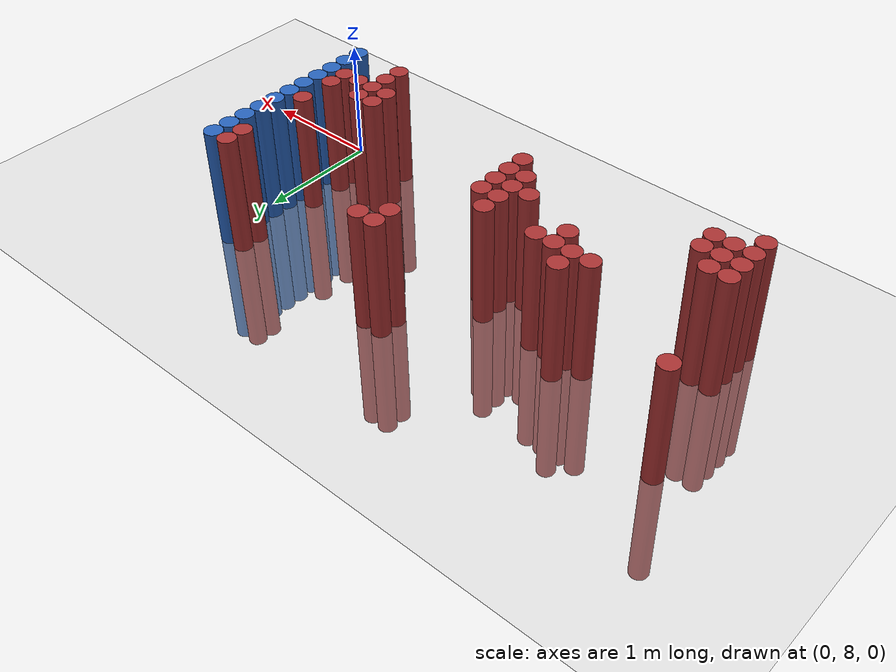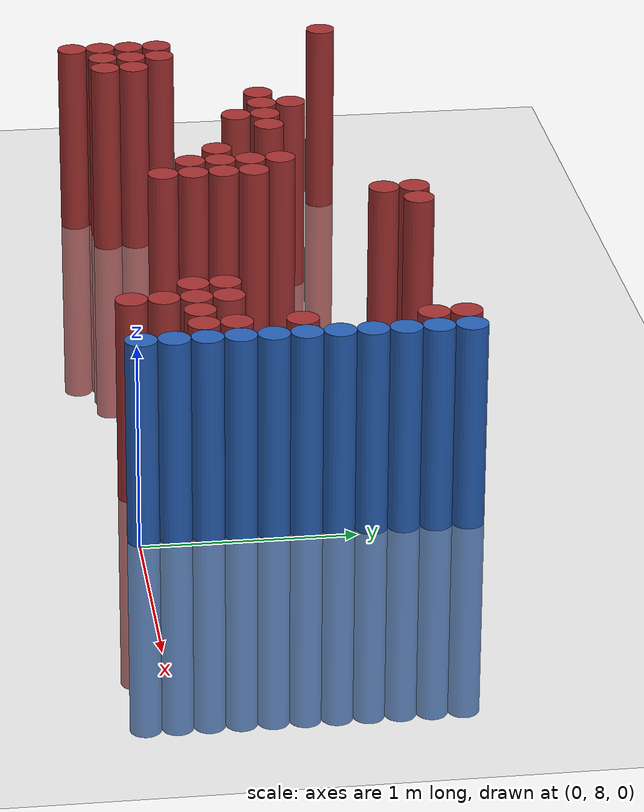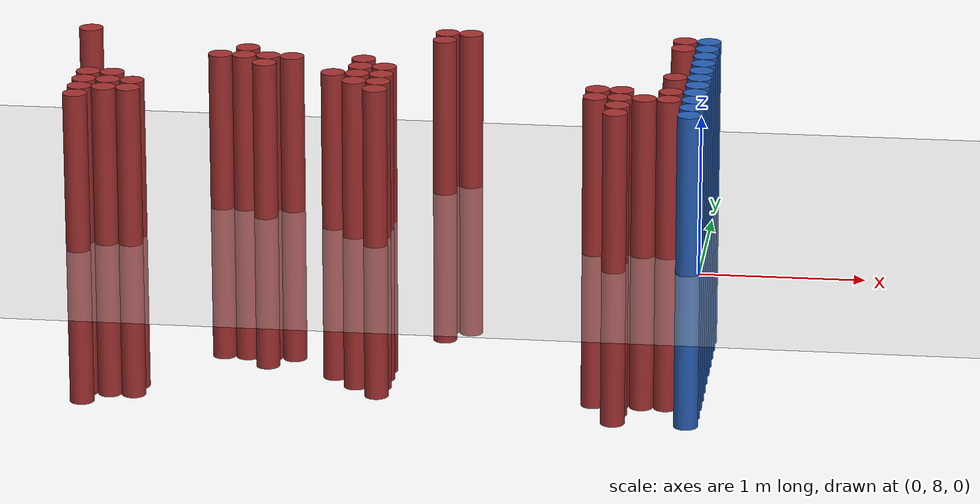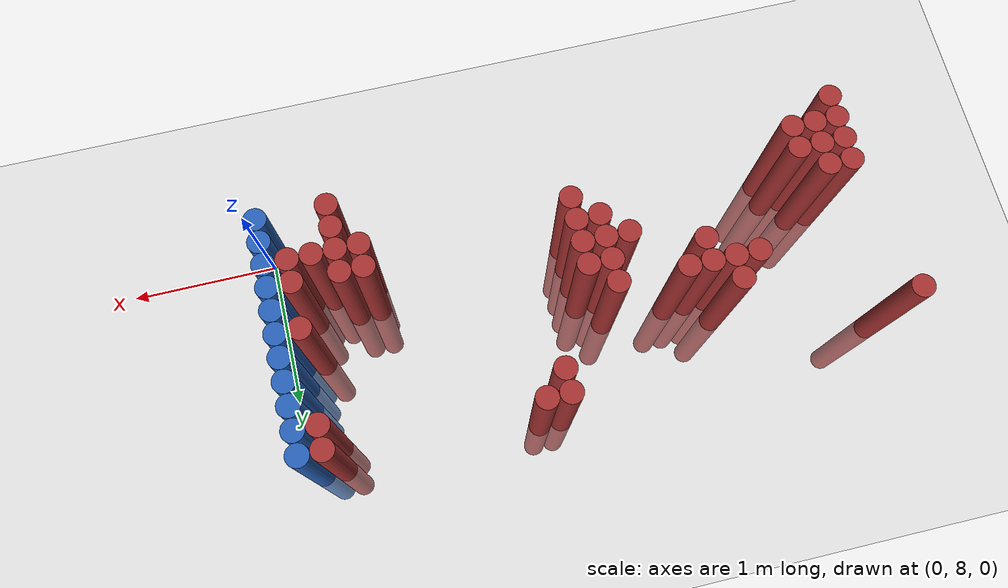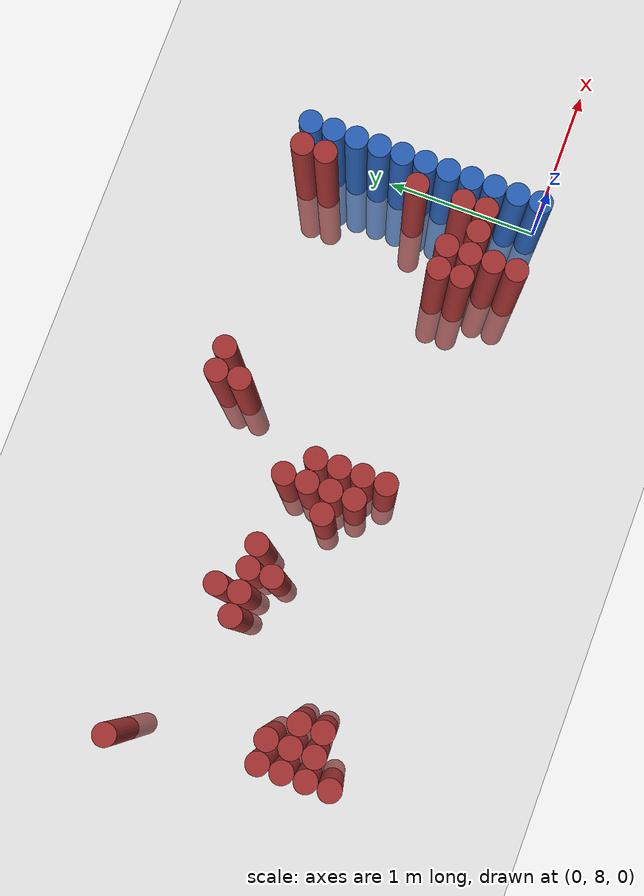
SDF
<sdf version="1.6">
 <world name="default">
  <model name="ground_plane">
   <static>1</static>
   <link name="link">
    <collision name="collision">
     <geometry><plane><normal>0 0 1</normal><size>100 100</size></plane></geometry>
     <surface><friction><ode><mu>100</mu><mu2>50</mu2></ode></friction></surface>
    </collision>
    <visual name="visual">
     <cast_shadows>0</cast_shadows>
     <geometry><plane><normal>0 0 1</normal><size>100 100</size></plane></geometry>
     <material>
      <script><uri>file://media/materials/scripts/gazebo.material</uri><name>Gazebo/Grey</name></script>
     </material>
    </visual>
   </link>
  </model>
  <model name="unit_cylinder_150">
   <static>1</static>
   <pose>-3.975000 9.375000 0.000000 0.000000 0.000000 0.000000</pose>
   <link name="link">
    <inertial>
     <mass>1</mass>
     <inertia><ixx>0.145833</ixx><ixy>0</ixy><ixz>0</ixz><iyy>0.145833</iyy><iyz>0</iyz><izz>0.125</izz></inertia>
    </inertial>
    <collision name="collision">
     <geometry><cylinder><radius>0.075000</radius><length>2</length></cylinder></geometry>
    </collision>
    <visual name="visual">
     <geometry><cylinder><radius>0.075000</radius><length>2</length></cylinder></geometry>
     <material>
      <ambient>0.648000 0.192000 0.192000 1</ambient>
      <diffuse>0.648000 0.192000 0.192000 1</diffuse>
     </material>
     <material>
      <script><name>Gazebo/Grey</name><uri>file://media/materials/scripts/gazebo.material</uri></script>
     </material>
    </visual>
   </link>
  </model>
  <model name="unit_cylinder_155">
   <static>1</static>
   <pose>-3.825000 8.025000 0.000000 0.000000 0.000000 0.000000</pose>
   <link name="link">
    <inertial>
     <mass>1</mass>
     <inertia><ixx>0.145833</ixx><ixy>0</ixy><ixz>0</ixz><iyy>0.145833</iyy><iyz>0</iyz><izz>0.125</izz></inertia>
    </inertial>
    <collision name="collision">
     <geometry><cylinder><radius>0.075000</radius><length>2</length></cylinder></geometry>
    </collision>
    <visual name="visual">
     <geometry><cylinder><radius>0.075000</radius><length>2</length></cylinder></geometry>
     <material>
      <ambient>0.648000 0.192000 0.192000 1</ambient>
      <diffuse>0.648000 0.192000 0.192000 1</diffuse>
     </material>
     <material>
      <script><name>Gazebo/Grey</name><uri>file://media/materials/scripts/gazebo.material</uri></script>
     </material>
    </visual>
   </link>
  </model>
  <model name="unit_cylinder_156">
   <static>1</static>
   <pose>-3.825000 8.175000 0.000000 0.000000 0.000000 0.000000</pose>
   <link name="link">
    <inertial>
     <mass>1</mass>
     <inertia><ixx>0.145833</ixx><ixy>0</ixy><ixz>0</ixz><iyy>0.145833</iyy><iyz>0</iyz><izz>0.125</izz></inertia>
    </inertial>
    <collision name="collision">
     <geometry><cylinder><radius>0.075000</radius><length>2</length></cylinder></geometry>
    </collision>
    <visual name="visual">
     <geometry><cylinder><radius>0.075000</radius><length>2</length></cylinder></geometry>
     <material>
      <ambient>0.648000 0.192000 0.192000 1</ambient>
      <diffuse>0.648000 0.192000 0.192000 1</diffuse>
     </material>
     <material>
      <script><name>Gazebo/Grey</name><uri>file://media/materials/scripts/gazebo.material</uri></script>
     </material>
    </visual>
   </link>
  </model>
  <model name="unit_cylinder_157">
   <static>1</static>
   <pose>-3.825000 8.325000 0.000000 0.000000 0.000000 0.000000</pose>
   <link name="link">
    <inertial>
     <mass>1</mass>
     <inertia><ixx>0.145833</ixx><ixy>0</ixy><ixz>0</ixz><iyy>0.145833</iyy><iyz>0</iyz><izz>0.125</izz></inertia>
    </inertial>
    <collision name="collision">
     <geometry><cylinder><radius>0.075000</radius><length>2</length></cylinder></geometry>
    </collision>
    <visual name="visual">
     <geometry><cylinder><radius>0.075000</radius><length>2</length></cylinder></geometry>
     <material>
      <ambient>0.648000 0.192000 0.192000 1</ambient>
      <diffuse>0.648000 0.192000 0.192000 1</diffuse>
     </material>
     <material>
      <script><name>Gazebo/Grey</name><uri>file://media/materials/scripts/gazebo.material</uri></script>
     </material>
    </visual>
   </link>
  </model>
  <model name="unit_cylinder_158">
   <static>1</static>
   <pose>-3.825000 8.475000 0.000000 0.000000 0.000000 0.000000</pose>
   <link name="link">
    <inertial>
     <mass>1</mass>
     <inertia><ixx>0.145833</ixx><ixy>0</ixy><ixz>0</ixz><iyy>0.145833</iyy><iyz>0</iyz><izz>0.125</izz></inertia>
    </inertial>
    <collision name="collision">
     <geometry><cylinder><radius>0.075000</radius><length>2</length></cylinder></geometry>
    </collision>
    <visual name="visual">
     <geometry><cylinder><radius>0.075000</radius><length>2</length></cylinder></geometry>
     <material>
      <ambient>0.648000 0.192000 0.192000 1</ambient>
      <diffuse>0.648000 0.192000 0.192000 1</diffuse>
     </material>
     <material>
      <script><name>Gazebo/Grey</name><uri>file://media/materials/scripts/gazebo.material</uri></script>
     </material>
    </visual>
   </link>
  </model>
  <model name="unit_cylinder_161">
   <static>1</static>
   <pose>-3.675000 8.175000 0.000000 0.000000 0.000000 0.000000</pose>
   <link name="link">
    <inertial>
     <mass>1</mass>
     <inertia><ixx>0.145833</ixx><ixy>0</ixy><ixz>0</ixz><iyy>0.145833</iyy><iyz>0</iyz><izz>0.125</izz></inertia>
    </inertial>
    <collision name="collision">
     <geometry><cylinder><radius>0.075000</radius><length>2</length></cylinder></geometry>
    </collision>
    <visual name="visual">
     <geometry><cylinder><radius>0.075000</radius><length>2</length></cylinder></geometry>
     <material>
      <ambient>0.648000 0.192000 0.192000 1</ambient>
      <diffuse>0.648000 0.192000 0.192000 1</diffuse>
     </material>
     <material>
      <script><name>Gazebo/Grey</name><uri>file://media/materials/scripts/gazebo.material</uri></script>
     </material>
    </visual>
   </link>
  </model>
  <model name="unit_cylinder_162">
   <static>1</static>
   <pose>-3.675000 8.325000 0.000000 0.000000 0.000000 0.000000</pose>
   <link name="link">
    <inertial>
     <mass>1</mass>
     <inertia><ixx>0.145833</ixx><ixy>0</ixy><ixz>0</ixz><iyy>0.145833</iyy><iyz>0</iyz><izz>0.125</izz></inertia>
    </inertial>
    <collision name="collision">
     <geometry><cylinder><radius>0.075000</radius><length>2</length></cylinder></geometry>
    </collision>
    <visual name="visual">
     <geometry><cylinder><radius>0.075000</radius><length>2</length></cylinder></geometry>
     <material>
      <ambient>0.648000 0.192000 0.192000 1</ambient>
      <diffuse>0.648000 0.192000 0.192000 1</diffuse>
     </material>
     <material>
      <script><name>Gazebo/Grey</name><uri>file://media/materials/scripts/gazebo.material</uri></script>
     </material>
    </visual>
   </link>
  </model>
  <model name="unit_cylinder_163">
   <static>1</static>
   <pose>-3.675000 8.475000 0.000000 0.000000 0.000000 0.000000</pose>
   <link name="link">
    <inertial>
     <mass>1</mass>
     <inertia><ixx>0.145833</ixx><ixy>0</ixy><ixz>0</ixz><iyy>0.145833</iyy><iyz>0</iyz><izz>0.125</izz></inertia>
    </inertial>
    <collision name="collision">
     <geometry><cylinder><radius>0.075000</radius><length>2</length></cylinder></geometry>
    </collision>
    <visual name="visual">
     <geometry><cylinder><radius>0.075000</radius><length>2</length></cylinder></geometry>
     <material>
      <ambient>0.648000 0.192000 0.192000 1</ambient>
      <diffuse>0.648000 0.192000 0.192000 1</diffuse>
     </material>
     <material>
      <script><name>Gazebo/Grey</name><uri>file://media/materials/scripts/gazebo.material</uri></script>
     </material>
    </visual>
   </link>
  </model>
  <model name="unit_cylinder_164">
   <static>1</static>
   <pose>-3.525000 8.175000 0.000000 0.000000 0.000000 0.000000</pose>
   <link name="link">
    <inertial>
     <mass>1</mass>
     <inertia><ixx>0.145833</ixx><ixy>0</ixy><ixz>0</ixz><iyy>0.145833</iyy><iyz>0</iyz><izz>0.125</izz></inertia>
    </inertial>
    <collision name="collision">
     <geometry><cylinder><radius>0.075000</radius><length>2</length></cylinder></geometry>
    </collision>
    <visual name="visual">
     <geometry><cylinder><radius>0.075000</radius><length>2</length></cylinder></geometry>
     <material>
      <ambient>0.648000 0.192000 0.192000 1</ambient>
      <diffuse>0.648000 0.192000 0.192000 1</diffuse>
     </material>
     <material>
      <script><name>Gazebo/Grey</name><uri>file://media/materials/scripts/gazebo.material</uri></script>
     </material>
    </visual>
   </link>
  </model>
  <model name="unit_cylinder_165">
   <static>1</static>
   <pose>-3.525000 8.325000 0.000000 0.000000 0.000000 0.000000</pose>
   <link name="link">
    <inertial>
     <mass>1</mass>
     <inertia><ixx>0.145833</ixx><ixy>0</ixy><ixz>0</ixz><iyy>0.145833</iyy><iyz>0</iyz><izz>0.125</izz></inertia>
    </inertial>
    <collision name="collision">
     <geometry><cylinder><radius>0.075000</radius><length>2</length></cylinder></geometry>
    </collision>
    <visual name="visual">
     <geometry><cylinder><radius>0.075000</radius><length>2</length></cylinder></geometry>
     <material>
      <ambient>0.648000 0.192000 0.192000 1</ambient>
      <diffuse>0.648000 0.192000 0.192000 1</diffuse>
     </material>
     <material>
      <script><name>Gazebo/Grey</name><uri>file://media/materials/scripts/gazebo.material</uri></script>
     </material>
    </visual>
   </link>
  </model>
  <model name="unit_cylinder_168">
   <static>1</static>
   <pose>-3.075000 8.925000 0.000000 0.000000 0.000000 0.000000</pose>
   <link name="link">
    <inertial>
     <mass>1</mass>
     <inertia><ixx>0.145833</ixx><ixy>0</ixy><ixz>0</ixz><iyy>0.145833</iyy><iyz>0</iyz><izz>0.125</izz></inertia>
    </inertial>
    <collision name="collision">
     <geometry><cylinder><radius>0.075000</radius><length>2</length></cylinder></geometry>
    </collision>
    <visual name="visual">
     <geometry><cylinder><radius>0.075000</radius><length>2</length></cylinder></geometry>
     <material>
      <ambient>0.648000 0.192000 0.192000 1</ambient>
      <diffuse>0.648000 0.192000 0.192000 1</diffuse>
     </material>
     <material>
      <script><name>Gazebo/Grey</name><uri>file://media/materials/scripts/gazebo.material</uri></script>
     </material>
    </visual>
   </link>
  </model>
  <model name="unit_cylinder_172">
   <static>1</static>
   <pose>-2.925000 8.925000 0.000000 0.000000 0.000000 0.000000</pose>
   <link name="link">
    <inertial>
     <mass>1</mass>
     <inertia><ixx>0.145833</ixx><ixy>0</ixy><ixz>0</ixz><iyy>0.145833</iyy><iyz>0</iyz><izz>0.125</izz></inertia>
    </inertial>
    <collision name="collision">
     <geometry><cylinder><radius>0.075000</radius><length>2</length></cylinder></geometry>
    </collision>
    <visual name="visual">
     <geometry><cylinder><radius>0.075000</radius><length>2</length></cylinder></geometry>
     <material>
      <ambient>0.648000 0.192000 0.192000 1</ambient>
      <diffuse>0.648000 0.192000 0.192000 1</diffuse>
     </material>
     <material>
      <script><name>Gazebo/Grey</name><uri>file://media/materials/scripts/gazebo.material</uri></script>
     </material>
    </visual>
   </link>
  </model>
  <model name="unit_cylinder_173">
   <static>1</static>
   <pose>-2.925000 9.075000 0.000000 0.000000 0.000000 0.000000</pose>
   <link name="link">
    <inertial>
     <mass>1</mass>
     <inertia><ixx>0.145833</ixx><ixy>0</ixy><ixz>0</ixz><iyy>0.145833</iyy><iyz>0</iyz><izz>0.125</izz></inertia>
    </inertial>
    <collision name="collision">
     <geometry><cylinder><radius>0.075000</radius><length>2</length></cylinder></geometry>
    </collision>
    <visual name="visual">
     <geometry><cylinder><radius>0.075000</radius><length>2</length></cylinder></geometry>
     <material>
      <ambient>0.648000 0.192000 0.192000 1</ambient>
      <diffuse>0.648000 0.192000 0.192000 1</diffuse>
     </material>
     <material>
      <script><name>Gazebo/Grey</name><uri>file://media/materials/scripts/gazebo.material</uri></script>
     </material>
    </visual>
   </link>
  </model>
  <model name="unit_cylinder_176">
   <static>1</static>
   <pose>-2.775000 8.775000 0.000000 0.000000 0.000000 0.000000</pose>
   <link name="link">
    <inertial>
     <mass>1</mass>
     <inertia><ixx>0.145833</ixx><ixy>0</ixy><ixz>0</ixz><iyy>0.145833</iyy><iyz>0</iyz><izz>0.125</izz></inertia>
    </inertial>
    <collision name="collision">
     <geometry><cylinder><radius>0.075000</radius><length>2</length></cylinder></geometry>
    </collision>
    <visual name="visual">
     <geometry><cylinder><radius>0.075000</radius><length>2</length></cylinder></geometry>
     <material>
      <ambient>0.648000 0.192000 0.192000 1</ambient>
      <diffuse>0.648000 0.192000 0.192000 1</diffuse>
     </material>
     <material>
      <script><name>Gazebo/Grey</name><uri>file://media/materials/scripts/gazebo.material</uri></script>
     </material>
    </visual>
   </link>
  </model>
  <model name="unit_cylinder_177">
   <static>1</static>
   <pose>-2.775000 8.925000 0.000000 0.000000 0.000000 0.000000</pose>
   <link name="link">
    <inertial>
     <mass>1</mass>
     <inertia><ixx>0.145833</ixx><ixy>0</ixy><ixz>0</ixz><iyy>0.145833</iyy><iyz>0</iyz><izz>0.125</izz></inertia>
    </inertial>
    <collision name="collision">
     <geometry><cylinder><radius>0.075000</radius><length>2</length></cylinder></geometry>
    </collision>
    <visual name="visual">
     <geometry><cylinder><radius>0.075000</radius><length>2</length></cylinder></geometry>
     <material>
      <ambient>0.648000 0.192000 0.192000 1</ambient>
      <diffuse>0.648000 0.192000 0.192000 1</diffuse>
     </material>
     <material>
      <script><name>Gazebo/Grey</name><uri>file://media/materials/scripts/gazebo.material</uri></script>
     </material>
    </visual>
   </link>
  </model>
  <model name="unit_cylinder_179">
   <static>1</static>
   <pose>-2.625000 8.925000 0.000000 0.000000 0.000000 0.000000</pose>
   <link name="link">
    <inertial>
     <mass>1</mass>
     <inertia><ixx>0.145833</ixx><ixy>0</ixy><ixz>0</ixz><iyy>0.145833</iyy><iyz>0</iyz><izz>0.125</izz></inertia>
    </inertial>
    <collision name="collision">
     <geometry><cylinder><radius>0.075000</radius><length>2</length></cylinder></geometry>
    </collision>
    <visual name="visual">
     <geometry><cylinder><radius>0.075000</radius><length>2</length></cylinder></geometry>
     <material>
      <ambient>0.648000 0.192000 0.192000 1</ambient>
      <diffuse>0.648000 0.192000 0.192000 1</diffuse>
     </material>
     <material>
      <script><name>Gazebo/Grey</name><uri>file://media/materials/scripts/gazebo.material</uri></script>
     </material>
    </visual>
   </link>
  </model>
  <model name="unit_cylinder_180">
   <static>1</static>
   <pose>-2.325000 8.625000 0.000000 0.000000 0.000000 0.000000</pose>
   <link name="link">
    <inertial>
     <mass>1</mass>
     <inertia><ixx>0.145833</ixx><ixy>0</ixy><ixz>0</ixz><iyy>0.145833</iyy><iyz>0</iyz><izz>0.125</izz></inertia>
    </inertial>
    <collision name="collision">
     <geometry><cylinder><radius>0.075000</radius><length>2</length></cylinder></geometry>
    </collision>
    <visual name="visual">
     <geometry><cylinder><radius>0.075000</radius><length>2</length></cylinder></geometry>
     <material>
      <ambient>0.648000 0.192000 0.192000 1</ambient>
      <diffuse>0.648000 0.192000 0.192000 1</diffuse>
     </material>
     <material>
      <script><name>Gazebo/Grey</name><uri>file://media/materials/scripts/gazebo.material</uri></script>
     </material>
    </visual>
   </link>
  </model>
  <model name="unit_cylinder_181">
   <static>1</static>
   <pose>-2.175000 8.475000 0.000000 0.000000 0.000000 0.000000</pose>
   <link name="link">
    <inertial>
     <mass>1</mass>
     <inertia><ixx>0.145833</ixx><ixy>0</ixy><ixz>0</ixz><iyy>0.145833</iyy><iyz>0</iyz><izz>0.125</izz></inertia>
    </inertial>
    <collision name="collision">
     <geometry><cylinder><radius>0.075000</radius><length>2</length></cylinder></geometry>
    </collision>
    <visual name="visual">
     <geometry><cylinder><radius>0.075000</radius><length>2</length></cylinder></geometry>
     <material>
      <ambient>0.648000 0.192000 0.192000 1</ambient>
      <diffuse>0.648000 0.192000 0.192000 1</diffuse>
     </material>
     <material>
      <script><name>Gazebo/Grey</name><uri>file://media/materials/scripts/gazebo.material</uri></script>
     </material>
    </visual>
   </link>
  </model>
  <model name="unit_cylinder_182">
   <static>1</static>
   <pose>-2.175000 8.625000 0.000000 0.000000 0.000000 0.000000</pose>
   <link name="link">
    <inertial>
     <mass>1</mass>
     <inertia><ixx>0.145833</ixx><ixy>0</ixy><ixz>0</ixz><iyy>0.145833</iyy><iyz>0</iyz><izz>0.125</izz></inertia>
    </inertial>
    <collision name="collision">
     <geometry><cylinder><radius>0.075000</radius><length>2</length></cylinder></geometry>
    </collision>
    <visual name="visual">
     <geometry><cylinder><radius>0.075000</radius><length>2</length></cylinder></geometry>
     <material>
      <ambient>0.648000 0.192000 0.192000 1</ambient>
      <diffuse>0.648000 0.192000 0.192000 1</diffuse>
     </material>
     <material>
      <script><name>Gazebo/Grey</name><uri>file://media/materials/scripts/gazebo.material</uri></script>
     </material>
    </visual>
   </link>
  </model>
  <model name="unit_cylinder_183">
   <static>1</static>
   <pose>-2.175000 8.775000 0.000000 0.000000 0.000000 0.000000</pose>
   <link name="link">
    <inertial>
     <mass>1</mass>
     <inertia><ixx>0.145833</ixx><ixy>0</ixy><ixz>0</ixz><iyy>0.145833</iyy><iyz>0</iyz><izz>0.125</izz></inertia>
    </inertial>
    <collision name="collision">
     <geometry><cylinder><radius>0.075000</radius><length>2</length></cylinder></geometry>
    </collision>
    <visual name="visual">
     <geometry><cylinder><radius>0.075000</radius><length>2</length></cylinder></geometry>
     <material>
      <ambient>0.648000 0.192000 0.192000 1</ambient>
      <diffuse>0.648000 0.192000 0.192000 1</diffuse>
     </material>
     <material>
      <script><name>Gazebo/Grey</name><uri>file://media/materials/scripts/gazebo.material</uri></script>
     </material>
    </visual>
   </link>
  </model>
  <model name="unit_cylinder_184">
   <static>1</static>
   <pose>-2.175000 8.925000 0.000000 0.000000 0.000000 0.000000</pose>
   <link name="link">
    <inertial>
     <mass>1</mass>
     <inertia><ixx>0.145833</ixx><ixy>0</ixy><ixz>0</ixz><iyy>0.145833</iyy><iyz>0</iyz><izz>0.125</izz></inertia>
    </inertial>
    <collision name="collision">
     <geometry><cylinder><radius>0.075000</radius><length>2</length></cylinder></geometry>
    </collision>
    <visual name="visual">
     <geometry><cylinder><radius>0.075000</radius><length>2</length></cylinder></geometry>
     <material>
      <ambient>0.648000 0.192000 0.192000 1</ambient>
      <diffuse>0.648000 0.192000 0.192000 1</diffuse>
     </material>
     <material>
      <script><name>Gazebo/Grey</name><uri>file://media/materials/scripts/gazebo.material</uri></script>
     </material>
    </visual>
   </link>
  </model>
  <model name="unit_cylinder_185">
   <static>1</static>
   <pose>-2.025000 8.325000 0.000000 0.000000 0.000000 0.000000</pose>
   <link name="link">
    <inertial>
     <mass>1</mass>
     <inertia><ixx>0.145833</ixx><ixy>0</ixy><ixz>0</ixz><iyy>0.145833</iyy><iyz>0</iyz><izz>0.125</izz></inertia>
    </inertial>
    <collision name="collision">
     <geometry><cylinder><radius>0.075000</radius><length>2</length></cylinder></geometry>
    </collision>
    <visual name="visual">
     <geometry><cylinder><radius>0.075000</radius><length>2</length></cylinder></geometry>
     <material>
      <ambient>0.648000 0.192000 0.192000 1</ambient>
      <diffuse>0.648000 0.192000 0.192000 1</diffuse>
     </material>
     <material>
      <script><name>Gazebo/Grey</name><uri>file://media/materials/scripts/gazebo.material</uri></script>
     </material>
    </visual>
   </link>
  </model>
  <model name="unit_cylinder_186">
   <static>1</static>
   <pose>-2.025000 8.475000 0.000000 0.000000 0.000000 0.000000</pose>
   <link name="link">
    <inertial>
     <mass>1</mass>
     <inertia><ixx>0.145833</ixx><ixy>0</ixy><ixz>0</ixz><iyy>0.145833</iyy><iyz>0</iyz><izz>0.125</izz></inertia>
    </inertial>
    <collision name="collision">
     <geometry><cylinder><radius>0.075000</radius><length>2</length></cylinder></geometry>
    </collision>
    <visual name="visual">
     <geometry><cylinder><radius>0.075000</radius><length>2</length></cylinder></geometry>
     <material>
      <ambient>0.648000 0.192000 0.192000 1</ambient>
      <diffuse>0.648000 0.192000 0.192000 1</diffuse>
     </material>
     <material>
      <script><name>Gazebo/Grey</name><uri>file://media/materials/scripts/gazebo.material</uri></script>
     </material>
    </visual>
   </link>
  </model>
  <model name="unit_cylinder_187">
   <static>1</static>
   <pose>-2.025000 8.625000 0.000000 0.000000 0.000000 0.000000</pose>
   <link name="link">
    <inertial>
     <mass>1</mass>
     <inertia><ixx>0.145833</ixx><ixy>0</ixy><ixz>0</ixz><iyy>0.145833</iyy><iyz>0</iyz><izz>0.125</izz></inertia>
    </inertial>
    <collision name="collision">
     <geometry><cylinder><radius>0.075000</radius><length>2</length></cylinder></geometry>
    </collision>
    <visual name="visual">
     <geometry><cylinder><radius>0.075000</radius><length>2</length></cylinder></geometry>
     <material>
      <ambient>0.648000 0.192000 0.192000 1</ambient>
      <diffuse>0.648000 0.192000 0.192000 1</diffuse>
     </material>
     <material>
      <script><name>Gazebo/Grey</name><uri>file://media/materials/scripts/gazebo.material</uri></script>
     </material>
    </visual>
   </link>
  </model>
  <model name="unit_cylinder_188">
   <static>1</static>
   <pose>-2.025000 8.775000 0.000000 0.000000 0.000000 0.000000</pose>
   <link name="link">
    <inertial>
     <mass>1</mass>
     <inertia><ixx>0.145833</ixx><ixy>0</ixy><ixz>0</ixz><iyy>0.145833</iyy><iyz>0</iyz><izz>0.125</izz></inertia>
    </inertial>
    <collision name="collision">
     <geometry><cylinder><radius>0.075000</radius><length>2</length></cylinder></geometry>
    </collision>
    <visual name="visual">
     <geometry><cylinder><radius>0.075000</radius><length>2</length></cylinder></geometry>
     <material>
      <ambient>0.648000 0.192000 0.192000 1</ambient>
      <diffuse>0.648000 0.192000 0.192000 1</diffuse>
     </material>
     <material>
      <script><name>Gazebo/Grey</name><uri>file://media/materials/scripts/gazebo.material</uri></script>
     </material>
    </visual>
   </link>
  </model>
  <model name="unit_cylinder_190">
   <static>1</static>
   <pose>-1.725000 9.375000 0.000000 0.000000 0.000000 0.000000</pose>
   <link name="link">
    <inertial>
     <mass>1</mass>
     <inertia><ixx>0.145833</ixx><ixy>0</ixy><ixz>0</ixz><iyy>0.145833</iyy><iyz>0</iyz><izz>0.125</izz></inertia>
    </inertial>
    <collision name="collision">
     <geometry><cylinder><radius>0.075000</radius><length>2</length></cylinder></geometry>
    </collision>
    <visual name="visual">
     <geometry><cylinder><radius>0.075000</radius><length>2</length></cylinder></geometry>
     <material>
      <ambient>0.648000 0.192000 0.192000 1</ambient>
      <diffuse>0.648000 0.192000 0.192000 1</diffuse>
     </material>
     <material>
      <script><name>Gazebo/Grey</name><uri>file://media/materials/scripts/gazebo.material</uri></script>
     </material>
    </visual>
   </link>
  </model>
  <model name="unit_cylinder_191">
   <static>1</static>
   <pose>-1.725000 9.525000 0.000000 0.000000 0.000000 0.000000</pose>
   <link name="link">
    <inertial>
     <mass>1</mass>
     <inertia><ixx>0.145833</ixx><ixy>0</ixy><ixz>0</ixz><iyy>0.145833</iyy><iyz>0</iyz><izz>0.125</izz></inertia>
    </inertial>
    <collision name="collision">
     <geometry><cylinder><radius>0.075000</radius><length>2</length></cylinder></geometry>
    </collision>
    <visual name="visual">
     <geometry><cylinder><radius>0.075000</radius><length>2</length></cylinder></geometry>
     <material>
      <ambient>0.648000 0.192000 0.192000 1</ambient>
      <diffuse>0.648000 0.192000 0.192000 1</diffuse>
     </material>
     <material>
      <script><name>Gazebo/Grey</name><uri>file://media/materials/scripts/gazebo.material</uri></script>
     </material>
    </visual>
   </link>
  </model>
  <model name="unit_cylinder_196">
   <static>1</static>
   <pose>-1.575000 9.525000 0.000000 0.000000 0.000000 0.000000</pose>
   <link name="link">
    <inertial>
     <mass>1</mass>
     <inertia><ixx>0.145833</ixx><ixy>0</ixy><ixz>0</ixz><iyy>0.145833</iyy><iyz>0</iyz><izz>0.125</izz></inertia>
    </inertial>
    <collision name="collision">
     <geometry><cylinder><radius>0.075000</radius><length>2</length></cylinder></geometry>
    </collision>
    <visual name="visual">
     <geometry><cylinder><radius>0.075000</radius><length>2</length></cylinder></geometry>
     <material>
      <ambient>0.648000 0.192000 0.192000 1</ambient>
      <diffuse>0.648000 0.192000 0.192000 1</diffuse>
     </material>
     <material>
      <script><name>Gazebo/Grey</name><uri>file://media/materials/scripts/gazebo.material</uri></script>
     </material>
    </visual>
   </link>
  </model>
  <model name="unit_cylinder_203">
   <static>1</static>
   <pose>-0.675000 8.325000 0.000000 0.000000 0.000000 0.000000</pose>
   <link name="link">
    <inertial>
     <mass>1</mass>
     <inertia><ixx>0.145833</ixx><ixy>0</ixy><ixz>0</ixz><iyy>0.145833</iyy><iyz>0</iyz><izz>0.125</izz></inertia>
    </inertial>
    <collision name="collision">
     <geometry><cylinder><radius>0.075000</radius><length>2</length></cylinder></geometry>
    </collision>
    <visual name="visual">
     <geometry><cylinder><radius>0.075000</radius><length>2</length></cylinder></geometry>
     <material>
      <ambient>0.648000 0.192000 0.192000 1</ambient>
      <diffuse>0.648000 0.192000 0.192000 1</diffuse>
     </material>
     <material>
      <script><name>Gazebo/Grey</name><uri>file://media/materials/scripts/gazebo.material</uri></script>
     </material>
    </visual>
   </link>
  </model>
  <model name="unit_cylinder_204">
   <static>1</static>
   <pose>-0.675000 8.475000 0.000000 0.000000 0.000000 0.000000</pose>
   <link name="link">
    <inertial>
     <mass>1</mass>
     <inertia><ixx>0.145833</ixx><ixy>0</ixy><ixz>0</ixz><iyy>0.145833</iyy><iyz>0</iyz><izz>0.125</izz></inertia>
    </inertial>
    <collision name="collision">
     <geometry><cylinder><radius>0.075000</radius><length>2</length></cylinder></geometry>
    </collision>
    <visual name="visual">
     <geometry><cylinder><radius>0.075000</radius><length>2</length></cylinder></geometry>
     <material>
      <ambient>0.648000 0.192000 0.192000 1</ambient>
      <diffuse>0.648000 0.192000 0.192000 1</diffuse>
     </material>
     <material>
      <script><name>Gazebo/Grey</name><uri>file://media/materials/scripts/gazebo.material</uri></script>
     </material>
    </visual>
   </link>
  </model>
  <model name="unit_cylinder_208">
   <static>1</static>
   <pose>-0.525000 8.025000 0.000000 0.000000 0.000000 0.000000</pose>
   <link name="link">
    <inertial>
     <mass>1</mass>
     <inertia><ixx>0.145833</ixx><ixy>0</ixy><ixz>0</ixz><iyy>0.145833</iyy><iyz>0</iyz><izz>0.125</izz></inertia>
    </inertial>
    <collision name="collision">
     <geometry><cylinder><radius>0.075000</radius><length>2</length></cylinder></geometry>
    </collision>
    <visual name="visual">
     <geometry><cylinder><radius>0.075000</radius><length>2</length></cylinder></geometry>
     <material>
      <ambient>0.648000 0.192000 0.192000 1</ambient>
      <diffuse>0.648000 0.192000 0.192000 1</diffuse>
     </material>
     <material>
      <script><name>Gazebo/Grey</name><uri>file://media/materials/scripts/gazebo.material</uri></script>
     </material>
    </visual>
   </link>
  </model>
  <model name="unit_cylinder_209">
   <static>1</static>
   <pose>-0.525000 8.175000 0.000000 0.000000 0.000000 0.000000</pose>
   <link name="link">
    <inertial>
     <mass>1</mass>
     <inertia><ixx>0.145833</ixx><ixy>0</ixy><ixz>0</ixz><iyy>0.145833</iyy><iyz>0</iyz><izz>0.125</izz></inertia>
    </inertial>
    <collision name="collision">
     <geometry><cylinder><radius>0.075000</radius><length>2</length></cylinder></geometry>
    </collision>
    <visual name="visual">
     <geometry><cylinder><radius>0.075000</radius><length>2</length></cylinder></geometry>
     <material>
      <ambient>0.648000 0.192000 0.192000 1</ambient>
      <diffuse>0.648000 0.192000 0.192000 1</diffuse>
     </material>
     <material>
      <script><name>Gazebo/Grey</name><uri>file://media/materials/scripts/gazebo.material</uri></script>
     </material>
    </visual>
   </link>
  </model>
  <model name="unit_cylinder_210">
   <static>1</static>
   <pose>-0.525000 8.325000 0.000000 0.000000 0.000000 0.000000</pose>
   <link name="link">
    <inertial>
     <mass>1</mass>
     <inertia><ixx>0.145833</ixx><ixy>0</ixy><ixz>0</ixz><iyy>0.145833</iyy><iyz>0</iyz><izz>0.125</izz></inertia>
    </inertial>
    <collision name="collision">
     <geometry><cylinder><radius>0.075000</radius><length>2</length></cylinder></geometry>
    </collision>
    <visual name="visual">
     <geometry><cylinder><radius>0.075000</radius><length>2</length></cylinder></geometry>
     <material>
      <ambient>0.648000 0.192000 0.192000 1</ambient>
      <diffuse>0.648000 0.192000 0.192000 1</diffuse>
     </material>
     <material>
      <script><name>Gazebo/Grey</name><uri>file://media/materials/scripts/gazebo.material</uri></script>
     </material>
    </visual>
   </link>
  </model>
  <model name="unit_cylinder_211">
   <static>1</static>
   <pose>-0.525000 8.475000 0.000000 0.000000 0.000000 0.000000</pose>
   <link name="link">
    <inertial>
     <mass>1</mass>
     <inertia><ixx>0.145833</ixx><ixy>0</ixy><ixz>0</ixz><iyy>0.145833</iyy><iyz>0</iyz><izz>0.125</izz></inertia>
    </inertial>
    <collision name="collision">
     <geometry><cylinder><radius>0.075000</radius><length>2</length></cylinder></geometry>
    </collision>
    <visual name="visual">
     <geometry><cylinder><radius>0.075000</radius><length>2</length></cylinder></geometry>
     <material>
      <ambient>0.648000 0.192000 0.192000 1</ambient>
      <diffuse>0.648000 0.192000 0.192000 1</diffuse>
     </material>
     <material>
      <script><name>Gazebo/Grey</name><uri>file://media/materials/scripts/gazebo.material</uri></script>
     </material>
    </visual>
   </link>
  </model>
  <model name="unit_cylinder_213">
   <static>1</static>
   <pose>-0.375000 8.325000 0.000000 0.000000 0.000000 0.000000</pose>
   <link name="link">
    <inertial>
     <mass>1</mass>
     <inertia><ixx>0.145833</ixx><ixy>0</ixy><ixz>0</ixz><iyy>0.145833</iyy><iyz>0</iyz><izz>0.125</izz></inertia>
    </inertial>
    <collision name="collision">
     <geometry><cylinder><radius>0.075000</radius><length>2</length></cylinder></geometry>
    </collision>
    <visual name="visual">
     <geometry><cylinder><radius>0.075000</radius><length>2</length></cylinder></geometry>
     <material>
      <ambient>0.648000 0.192000 0.192000 1</ambient>
      <diffuse>0.648000 0.192000 0.192000 1</diffuse>
     </material>
     <material>
      <script><name>Gazebo/Grey</name><uri>file://media/materials/scripts/gazebo.material</uri></script>
     </material>
    </visual>
   </link>
  </model>
  <model name="unit_cylinder_220">
   <static>1</static>
   <pose>-0.225000 8.325000 0.000000 0.000000 0.000000 0.000000</pose>
   <link name="link">
    <inertial>
     <mass>1</mass>
     <inertia><ixx>0.145833</ixx><ixy>0</ixy><ixz>0</ixz><iyy>0.145833</iyy><iyz>0</iyz><izz>0.125</izz></inertia>
    </inertial>
    <collision name="collision">
     <geometry><cylinder><radius>0.075000</radius><length>2</length></cylinder></geometry>
    </collision>
    <visual name="visual">
     <geometry><cylinder><radius>0.075000</radius><length>2</length></cylinder></geometry>
     <material>
      <ambient>0.648000 0.192000 0.192000 1</ambient>
      <diffuse>0.648000 0.192000 0.192000 1</diffuse>
     </material>
     <material>
      <script><name>Gazebo/Grey</name><uri>file://media/materials/scripts/gazebo.material</uri></script>
     </material>
    </visual>
   </link>
  </model>
  <model name="unit_cylinder_221">
   <static>1</static>
   <pose>-0.225000 8.475000 0.000000 0.000000 0.000000 0.000000</pose>
   <link name="link">
    <inertial>
     <mass>1</mass>
     <inertia><ixx>0.145833</ixx><ixy>0</ixy><ixz>0</ixz><iyy>0.145833</iyy><iyz>0</iyz><izz>0.125</izz></inertia>
    </inertial>
    <collision name="collision">
     <geometry><cylinder><radius>0.075000</radius><length>2</length></cylinder></geometry>
    </collision>
    <visual name="visual">
     <geometry><cylinder><radius>0.075000</radius><length>2</length></cylinder></geometry>
     <material>
      <ambient>0.648000 0.192000 0.192000 1</ambient>
      <diffuse>0.648000 0.192000 0.192000 1</diffuse>
     </material>
     <material>
      <script><name>Gazebo/Grey</name><uri>file://media/materials/scripts/gazebo.material</uri></script>
     </material>
    </visual>
   </link>
  </model>
  <model name="unit_cylinder_222">
   <static>1</static>
   <pose>-0.225000 8.775000 0.000000 0.000000 0.000000 0.000000</pose>
   <link name="link">
    <inertial>
     <mass>1</mass>
     <inertia><ixx>0.145833</ixx><ixy>0</ixy><ixz>0</ixz><iyy>0.145833</iyy><iyz>0</iyz><izz>0.125</izz></inertia>
    </inertial>
    <collision name="collision">
     <geometry><cylinder><radius>0.075000</radius><length>2</length></cylinder></geometry>
    </collision>
    <visual name="visual">
     <geometry><cylinder><radius>0.075000</radius><length>2</length></cylinder></geometry>
     <material>
      <ambient>0.648000 0.192000 0.192000 1</ambient>
      <diffuse>0.648000 0.192000 0.192000 1</diffuse>
     </material>
     <material>
      <script><name>Gazebo/Grey</name><uri>file://media/materials/scripts/gazebo.material</uri></script>
     </material>
    </visual>
   </link>
  </model>
  <model name="unit_cylinder_223">
   <static>1</static>
   <pose>-0.225000 9.375000 0.000000 0.000000 0.000000 0.000000</pose>
   <link name="link">
    <inertial>
     <mass>1</mass>
     <inertia><ixx>0.145833</ixx><ixy>0</ixy><ixz>0</ixz><iyy>0.145833</iyy><iyz>0</iyz><izz>0.125</izz></inertia>
    </inertial>
    <collision name="collision">
     <geometry><cylinder><radius>0.075000</radius><length>2</length></cylinder></geometry>
    </collision>
    <visual name="visual">
     <geometry><cylinder><radius>0.075000</radius><length>2</length></cylinder></geometry>
     <material>
      <ambient>0.648000 0.192000 0.192000 1</ambient>
      <diffuse>0.648000 0.192000 0.192000 1</diffuse>
     </material>
     <material>
      <script><name>Gazebo/Grey</name><uri>file://media/materials/scripts/gazebo.material</uri></script>
     </material>
    </visual>
   </link>
  </model>
  <model name="unit_cylinder_224">
   <static>1</static>
   <pose>-0.225000 9.525000 0.000000 0.000000 0.000000 0.000000</pose>
   <link name="link">
    <inertial>
     <mass>1</mass>
     <inertia><ixx>0.145833</ixx><ixy>0</ixy><ixz>0</ixz><iyy>0.145833</iyy><iyz>0</iyz><izz>0.125</izz></inertia>
    </inertial>
    <collision name="collision">
     <geometry><cylinder><radius>0.075000</radius><length>2</length></cylinder></geometry>
    </collision>
    <visual name="visual">
     <geometry><cylinder><radius>0.075000</radius><length>2</length></cylinder></geometry>
     <material>
      <ambient>0.648000 0.192000 0.192000 1</ambient>
      <diffuse>0.648000 0.192000 0.192000 1</diffuse>
     </material>
     <material>
      <script><name>Gazebo/Grey</name><uri>file://media/materials/scripts/gazebo.material</uri></script>
     </material>
    </visual>
   </link>
  </model>
  <model name="unit_cylinder_244">
   <static>1</static>
   <pose>-0.075000 8.025000 0.000000 0.000000 0.000000 0.000000</pose>
   <link name="link">
    <inertial>
     <mass>1</mass>
     <inertia><ixx>0.145833</ixx><ixy>0</ixy><ixz>0</ixz><iyy>0.145833</iyy><iyz>0</iyz><izz>0.125</izz></inertia>
    </inertial>
    <collision name="collision">
     <geometry><cylinder><radius>0.075000</radius><length>2</length></cylinder></geometry>
    </collision>
    <visual name="visual">
     <geometry><cylinder><radius>0.075000</radius><length>2</length></cylinder></geometry>
     <material>
      <ambient>0.152000 0.379000 0.720000 1</ambient>
      <diffuse>0.152000 0.379000 0.720000 1</diffuse>
     </material>
     <material>
      <script><name>Gazebo/Grey</name><uri>file://media/materials/scripts/gazebo.material</uri></script>
     </material>
    </visual>
   </link>
  </model>
  <model name="unit_cylinder_245">
   <static>1</static>
   <pose>-0.075000 8.175000 0.000000 0.000000 0.000000 0.000000</pose>
   <link name="link">
    <inertial>
     <mass>1</mass>
     <inertia><ixx>0.145833</ixx><ixy>0</ixy><ixz>0</ixz><iyy>0.145833</iyy><iyz>0</iyz><izz>0.125</izz></inertia>
    </inertial>
    <collision name="collision">
     <geometry><cylinder><radius>0.075000</radius><length>2</length></cylinder></geometry>
    </collision>
    <visual name="visual">
     <geometry><cylinder><radius>0.075000</radius><length>2</length></cylinder></geometry>
     <material>
      <ambient>0.152000 0.379000 0.720000 1</ambient>
      <diffuse>0.152000 0.379000 0.720000 1</diffuse>
     </material>
     <material>
      <script><name>Gazebo/Grey</name><uri>file://media/materials/scripts/gazebo.material</uri></script>
     </material>
    </visual>
   </link>
  </model>
  <model name="unit_cylinder_246">
   <static>1</static>
   <pose>-0.075000 8.325000 0.000000 0.000000 0.000000 0.000000</pose>
   <link name="link">
    <inertial>
     <mass>1</mass>
     <inertia><ixx>0.145833</ixx><ixy>0</ixy><ixz>0</ixz><iyy>0.145833</iyy><iyz>0</iyz><izz>0.125</izz></inertia>
    </inertial>
    <collision name="collision">
     <geometry><cylinder><radius>0.075000</radius><length>2</length></cylinder></geometry>
    </collision>
    <visual name="visual">
     <geometry><cylinder><radius>0.075000</radius><length>2</length></cylinder></geometry>
     <material>
      <ambient>0.152000 0.379000 0.720000 1</ambient>
      <diffuse>0.152000 0.379000 0.720000 1</diffuse>
     </material>
     <material>
      <script><name>Gazebo/Grey</name><uri>file://media/materials/scripts/gazebo.material</uri></script>
     </material>
    </visual>
   </link>
  </model>
  <model name="unit_cylinder_247">
   <static>1</static>
   <pose>-0.075000 8.475000 0.000000 0.000000 0.000000 0.000000</pose>
   <link name="link">
    <inertial>
     <mass>1</mass>
     <inertia><ixx>0.145833</ixx><ixy>0</ixy><ixz>0</ixz><iyy>0.145833</iyy><iyz>0</iyz><izz>0.125</izz></inertia>
    </inertial>
    <collision name="collision">
     <geometry><cylinder><radius>0.075000</radius><length>2</length></cylinder></geometry>
    </collision>
    <visual name="visual">
     <geometry><cylinder><radius>0.075000</radius><length>2</length></cylinder></geometry>
     <material>
      <ambient>0.152000 0.379000 0.720000 1</ambient>
      <diffuse>0.152000 0.379000 0.720000 1</diffuse>
     </material>
     <material>
      <script><name>Gazebo/Grey</name><uri>file://media/materials/scripts/gazebo.material</uri></script>
     </material>
    </visual>
   </link>
  </model>
  <model name="unit_cylinder_248">
   <static>1</static>
   <pose>-0.075000 8.625000 0.000000 0.000000 0.000000 0.000000</pose>
   <link name="link">
    <inertial>
     <mass>1</mass>
     <inertia><ixx>0.145833</ixx><ixy>0</ixy><ixz>0</ixz><iyy>0.145833</iyy><iyz>0</iyz><izz>0.125</izz></inertia>
    </inertial>
    <collision name="collision">
     <geometry><cylinder><radius>0.075000</radius><length>2</length></cylinder></geometry>
    </collision>
    <visual name="visual">
     <geometry><cylinder><radius>0.075000</radius><length>2</length></cylinder></geometry>
     <material>
      <ambient>0.152000 0.379000 0.720000 1</ambient>
      <diffuse>0.152000 0.379000 0.720000 1</diffuse>
     </material>
     <material>
      <script><name>Gazebo/Grey</name><uri>file://media/materials/scripts/gazebo.material</uri></script>
     </material>
    </visual>
   </link>
  </model>
  <model name="unit_cylinder_249">
   <static>1</static>
   <pose>-0.075000 8.775000 0.000000 0.000000 0.000000 0.000000</pose>
   <link name="link">
    <inertial>
     <mass>1</mass>
     <inertia><ixx>0.145833</ixx><ixy>0</ixy><ixz>0</ixz><iyy>0.145833</iyy><iyz>0</iyz><izz>0.125</izz></inertia>
    </inertial>
    <collision name="collision">
     <geometry><cylinder><radius>0.075000</radius><length>2</length></cylinder></geometry>
    </collision>
    <visual name="visual">
     <geometry><cylinder><radius>0.075000</radius><length>2</length></cylinder></geometry>
     <material>
      <ambient>0.152000 0.379000 0.720000 1</ambient>
      <diffuse>0.152000 0.379000 0.720000 1</diffuse>
     </material>
     <material>
      <script><name>Gazebo/Grey</name><uri>file://media/materials/scripts/gazebo.material</uri></script>
     </material>
    </visual>
   </link>
  </model>
  <model name="unit_cylinder_250">
   <static>1</static>
   <pose>-0.075000 8.925000 0.000000 0.000000 0.000000 0.000000</pose>
   <link name="link">
    <inertial>
     <mass>1</mass>
     <inertia><ixx>0.145833</ixx><ixy>0</ixy><ixz>0</ixz><iyy>0.145833</iyy><iyz>0</iyz><izz>0.125</izz></inertia>
    </inertial>
    <collision name="collision">
     <geometry><cylinder><radius>0.075000</radius><length>2</length></cylinder></geometry>
    </collision>
    <visual name="visual">
     <geometry><cylinder><radius>0.075000</radius><length>2</length></cylinder></geometry>
     <material>
      <ambient>0.152000 0.379000 0.720000 1</ambient>
      <diffuse>0.152000 0.379000 0.720000 1</diffuse>
     </material>
     <material>
      <script><name>Gazebo/Grey</name><uri>file://media/materials/scripts/gazebo.material</uri></script>
     </material>
    </visual>
   </link>
  </model>
  <model name="unit_cylinder_251">
   <static>1</static>
   <pose>-0.075000 9.075000 0.000000 0.000000 0.000000 0.000000</pose>
   <link name="link">
    <inertial>
     <mass>1</mass>
     <inertia><ixx>0.145833</ixx><ixy>0</ixy><ixz>0</ixz><iyy>0.145833</iyy><iyz>0</iyz><izz>0.125</izz></inertia>
    </inertial>
    <collision name="collision">
     <geometry><cylinder><radius>0.075000</radius><length>2</length></cylinder></geometry>
    </collision>
    <visual name="visual">
     <geometry><cylinder><radius>0.075000</radius><length>2</length></cylinder></geometry>
     <material>
      <ambient>0.152000 0.379000 0.720000 1</ambient>
      <diffuse>0.152000 0.379000 0.720000 1</diffuse>
     </material>
     <material>
      <script><name>Gazebo/Grey</name><uri>file://media/materials/scripts/gazebo.material</uri></script>
     </material>
    </visual>
   </link>
  </model>
  <model name="unit_cylinder_252">
   <static>1</static>
   <pose>-0.075000 9.225000 0.000000 0.000000 0.000000 0.000000</pose>
   <link name="link">
    <inertial>
     <mass>1</mass>
     <inertia><ixx>0.145833</ixx><ixy>0</ixy><ixz>0</ixz><iyy>0.145833</iyy><iyz>0</iyz><izz>0.125</izz></inertia>
    </inertial>
    <collision name="collision">
     <geometry><cylinder><radius>0.075000</radius><length>2</length></cylinder></geometry>
    </collision>
    <visual name="visual">
     <geometry><cylinder><radius>0.075000</radius><length>2</length></cylinder></geometry>
     <material>
      <ambient>0.152000 0.379000 0.720000 1</ambient>
      <diffuse>0.152000 0.379000 0.720000 1</diffuse>
     </material>
     <material>
      <script><name>Gazebo/Grey</name><uri>file://media/materials/scripts/gazebo.material</uri></script>
     </material>
    </visual>
   </link>
  </model>
  <model name="unit_cylinder_253">
   <static>1</static>
   <pose>-0.075000 9.375000 0.000000 0.000000 0.000000 0.000000</pose>
   <link name="link">
    <inertial>
     <mass>1</mass>
     <inertia><ixx>0.145833</ixx><ixy>0</ixy><ixz>0</ixz><iyy>0.145833</iyy><iyz>0</iyz><izz>0.125</izz></inertia>
    </inertial>
    <collision name="collision">
     <geometry><cylinder><radius>0.075000</radius><length>2</length></cylinder></geometry>
    </collision>
    <visual name="visual">
     <geometry><cylinder><radius>0.075000</radius><length>2</length></cylinder></geometry>
     <material>
      <ambient>0.152000 0.379000 0.720000 1</ambient>
      <diffuse>0.152000 0.379000 0.720000 1</diffuse>
     </material>
     <material>
      <script><name>Gazebo/Grey</name><uri>file://media/materials/scripts/gazebo.material</uri></script>
     </material>
    </visual>
   </link>
  </model>
  <model name="unit_cylinder_254">
   <static>1</static>
   <pose>-0.075000 9.525000 0.000000 0.000000 0.000000 0.000000</pose>
   <link name="link">
    <inertial>
     <mass>1</mass>
     <inertia><ixx>0.145833</ixx><ixy>0</ixy><ixz>0</ixz><iyy>0.145833</iyy><iyz>0</iyz><izz>0.125</izz></inertia>
    </inertial>
    <collision name="collision">
     <geometry><cylinder><radius>0.075000</radius><length>2</length></cylinder></geometry>
    </collision>
    <visual name="visual">
     <geometry><cylinder><radius>0.075000</radius><length>2</length></cylinder></geometry>
     <material>
      <ambient>0.152000 0.379000 0.720000 1</ambient>
      <diffuse>0.152000 0.379000 0.720000 1</diffuse>
     </material>
     <material>
      <script><name>Gazebo/Grey</name><uri>file://media/materials/scripts/gazebo.material</uri></script>
     </material>
    </visual>
   </link>
  </model>
 </world>
</sdf>
